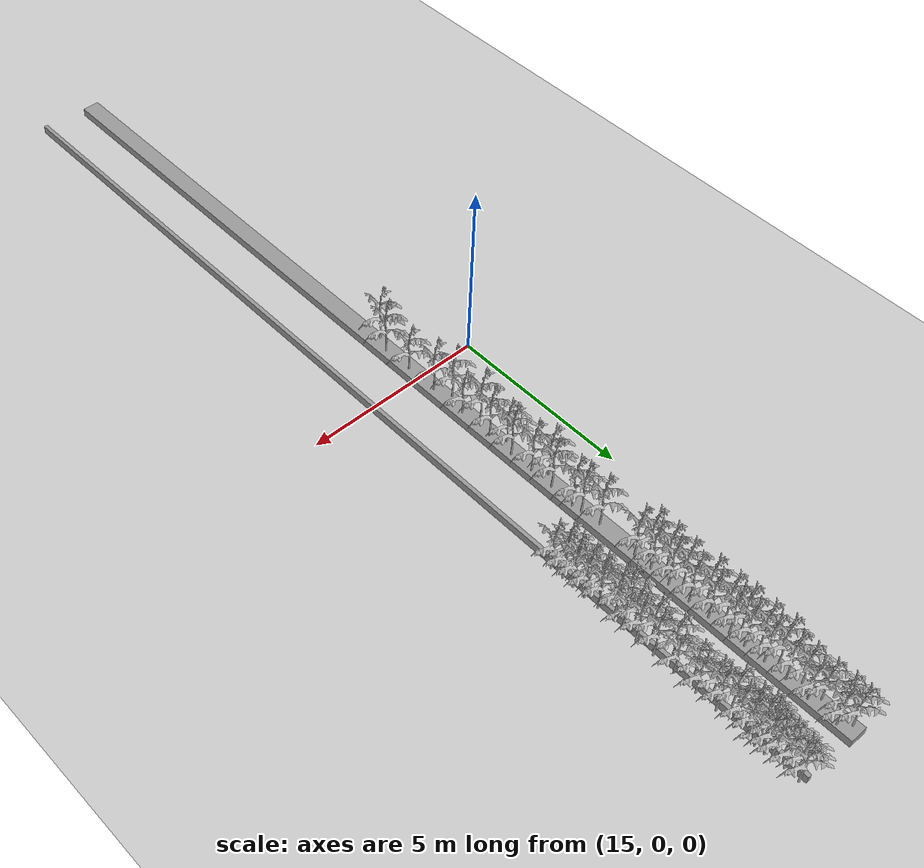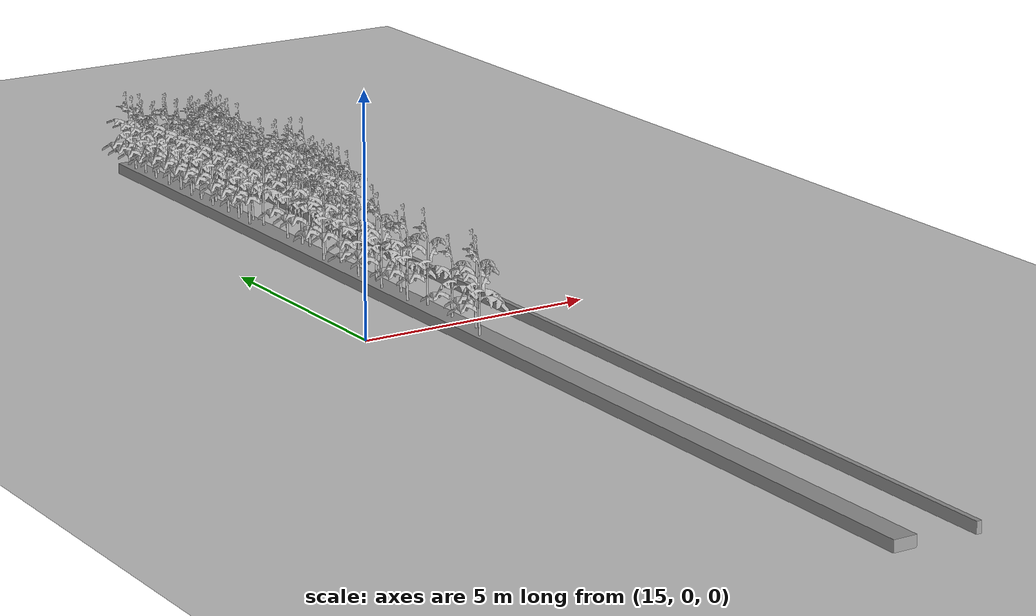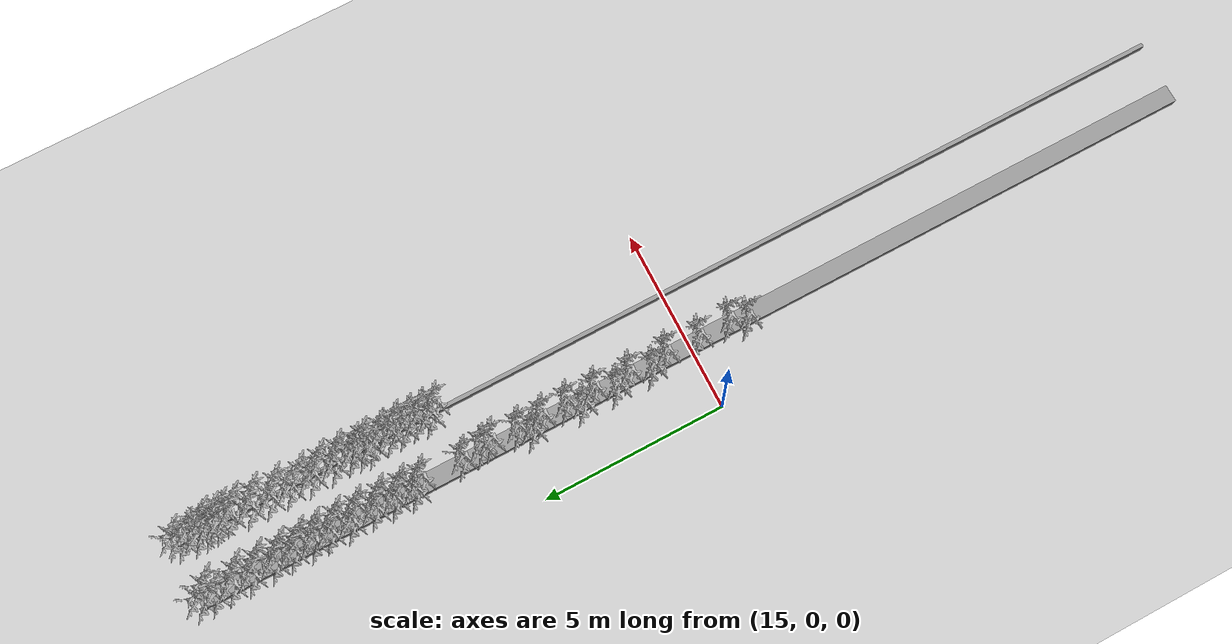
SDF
<sdf version="1.6">
 <world name="default">
  <model name="ground_plane">
   <static>1</static>
   <link name="link">
    <collision name="collision">
     <geometry><plane><normal>0 0 1</normal><size>100 100</size></plane></geometry>
     <surface>
      <contact><collide_bitmask>65535</collide_bitmask></contact>
      <friction><ode><mu>100</mu><mu2>50</mu2></ode></friction>
     </surface>
    </collision>
    <visual name="visual">
     <cast_shadows>0</cast_shadows>
     <geometry><plane><normal>0 0 1</normal><size>100 100</size></plane></geometry>
     <material>
      <script><uri>file://media/materials/scripts/gazebo.material</uri><name>Gazebo/Grey</name></script>
     </material>
    </visual>
   </link>
  </model>
  <model name="plant_base_clone_clone_0">
   <link name="link">
    <inertial>
     <mass>1</mass>
     <inertia>
      <ixx>0.166667</ixx>
      <ixy>0</ixy>
      <ixz>0</ixz>
      <iyy>0.166667</iyy>
      <iyz>0</iyz>
      <izz>0.166667</izz>
     </inertia>
    </inertial>
    <visual name="visual">
     <geometry><box><size>0.108423 27.8593 0.235695</size></box></geometry>
     <material>
      <script><name>Gazebo/Grey</name><uri>file://media/materials/scripts/gazebo.material</uri></script>
     </material>
    </visual>
    <collision name="collision">
     <geometry><box><size>0.108423 27.8593 0.235695</size></box></geometry>
     <surface>
      <friction>
       <ode><mu>1</mu><mu2>1</mu2><fdir1>0 0 0</fdir1><slip1>0</slip1><slip2>0</slip2></ode>
       <torsional>
        <coefficient>1</coefficient>
        <patch_radius>0</patch_radius>
        <surface_radius>0</surface_radius>
        <use_patch_radius>1</use_patch_radius>
        <ode><slip>0</slip></ode>
       </torsional>
      </friction>
      <bounce><restitution_coefficient>0</restitution_coefficient><threshold>1e+06</threshold></bounce>
      <contact>
       <collide_without_contact>0</collide_without_contact>
       <collide_without_contact_bitmask>1</collide_without_contact_bitmask>
       <collide_bitmask>1</collide_bitmask>
       <ode>
        <soft_cfm>0</soft_cfm>
        <soft_erp>0.2</soft_erp>
        <kp>1e+13</kp>
        <kd>1</kd>
        <max_vel>0.01</max_vel>
        <min_depth>0</min_depth>
       </ode>
       <bullet>
        <split_impulse>1</split_impulse>
        <split_impulse_penetration_threshold>-0.01</split_impulse_penetration_threshold>
        <soft_cfm>0</soft_cfm>
        <soft_erp>0.2</soft_erp>
        <kp>1e+13</kp>
        <kd>1</kd>
       </bullet>
      </contact>
     </surface>
    </collision>
   </link>
   <static>1</static>
   <pose>18.2611 -0.481715 0.134309 0 -0 0</pose>
  </model>
  <model name="plant_base_clone_clone_0_clone">
   <link name="link">
    <inertial>
     <mass>1</mass>
     <inertia>
      <ixx>0.166667</ixx>
      <ixy>0</ixy>
      <ixz>0</ixz>
      <iyy>0.166667</iyy>
      <iyz>0</iyz>
      <izz>0.166667</izz>
     </inertia>
    </inertial>
    <visual name="visual">
     <geometry><box><size>0.484753 27.8593 0.235695</size></box></geometry>
     <material>
      <script><name>Gazebo/Grey</name><uri>file://media/materials/scripts/gazebo.material</uri></script>
     </material>
    </visual>
    <collision name="collision">
     <geometry><box><size>0.484753 27.8593 0.235695</size></box></geometry>
     <surface>
      <friction>
       <ode><mu>1</mu><mu2>1</mu2><fdir1>0 0 0</fdir1><slip1>0</slip1><slip2>0</slip2></ode>
       <torsional>
        <coefficient>1</coefficient>
        <patch_radius>0</patch_radius>
        <surface_radius>0</surface_radius>
        <use_patch_radius>1</use_patch_radius>
        <ode><slip>0</slip></ode>
       </torsional>
      </friction>
      <bounce><restitution_coefficient>0</restitution_coefficient><threshold>1e+06</threshold></bounce>
      <contact>
       <collide_without_contact>0</collide_without_contact>
       <collide_without_contact_bitmask>1</collide_without_contact_bitmask>
       <collide_bitmask>1</collide_bitmask>
       <ode>
        <soft_cfm>0</soft_cfm>
        <soft_erp>0.2</soft_erp>
        <kp>1e+13</kp>
        <kd>1</kd>
        <max_vel>0.01</max_vel>
        <min_depth>0</min_depth>
       </ode>
       <bullet>
        <split_impulse>1</split_impulse>
        <split_impulse_penetration_threshold>-0.01</split_impulse_penetration_threshold>
        <soft_cfm>0</soft_cfm>
        <soft_erp>0.2</soft_erp>
        <kp>1e+13</kp>
        <kd>1</kd>
       </bullet>
      </contact>
     </surface>
    </collision>
   </link>
   <static>1</static>
   <pose>16.7542 -0.411562 0.134309 0 -0 0</pose>
  </model>
  <model name="tomato_plant_small">
   <static>1</static>
   <link name="link">
    <collision name="collision">
     <geometry>
      <mesh><scale>5e-06 5e-06 5e-06</scale><uri>model://tomato_plant_small/meshes/tomato-plant.dae</uri></mesh>
     </geometry>
    </collision>
    <visual name="visual">
     <geometry>
      <mesh><scale>5e-06 5e-06 5e-06</scale><uri>model://tomato_plant_small/meshes/tomato-plant.dae</uri></mesh>
     </geometry>
    </visual>
   </link>
   <pose>18.3906 13.2946 0 0 -0 0</pose>
  </model>
  <model name="tomato_plant_small_0">
   <static>1</static>
   <link name="link">
    <collision name="collision">
     <geometry>
      <mesh><scale>5e-06 5e-06 5e-06</scale><uri>model://tomato_plant_small/meshes/tomato-plant.dae</uri></mesh>
     </geometry>
    </collision>
    <visual name="visual">
     <geometry>
      <mesh><scale>5e-06 5e-06 5e-06</scale><uri>model://tomato_plant_small/meshes/tomato-plant.dae</uri></mesh>
     </geometry>
    </visual>
   </link>
   <pose>18.2442 13.1328 0 0 -0 0</pose>
  </model>
  <model name="tomato_plant_small_1">
   <static>1</static>
   <link name="link">
    <collision name="collision">
     <geometry>
      <mesh><scale>5e-06 5e-06 5e-06</scale><uri>model://tomato_plant_small/meshes/tomato-plant.dae</uri></mesh>
     </geometry>
    </collision>
    <visual name="visual">
     <geometry>
      <mesh><scale>5e-06 5e-06 5e-06</scale><uri>model://tomato_plant_small/meshes/tomato-plant.dae</uri></mesh>
     </geometry>
    </visual>
   </link>
   <pose>18.3727 12.9067 0 0 -0 0</pose>
  </model>
  <model name="tomato_plant_small_2">
   <static>1</static>
   <link name="link">
    <collision name="collision">
     <geometry>
      <mesh><scale>5e-06 5e-06 5e-06</scale><uri>model://tomato_plant_small/meshes/tomato-plant.dae</uri></mesh>
     </geometry>
    </collision>
    <visual name="visual">
     <geometry>
      <mesh><scale>5e-06 5e-06 5e-06</scale><uri>model://tomato_plant_small/meshes/tomato-plant.dae</uri></mesh>
     </geometry>
    </visual>
   </link>
   <pose>18.177 12.7212 0 0 -0 0</pose>
  </model>
  <model name="tomato_plant_small_3">
   <static>1</static>
   <link name="link">
    <collision name="collision">
     <geometry>
      <mesh><scale>5e-06 5e-06 5e-06</scale><uri>model://tomato_plant_small/meshes/tomato-plant.dae</uri></mesh>
     </geometry>
    </collision>
    <visual name="visual">
     <geometry>
      <mesh><scale>5e-06 5e-06 5e-06</scale><uri>model://tomato_plant_small/meshes/tomato-plant.dae</uri></mesh>
     </geometry>
    </visual>
   </link>
   <pose>18.4025 12.5943 0 0 -0 0</pose>
  </model>
  <model name="tomato_plant_small_4">
   <static>1</static>
   <link name="link">
    <collision name="collision">
     <geometry>
      <mesh><scale>5e-06 5e-06 5e-06</scale><uri>model://tomato_plant_small/meshes/tomato-plant.dae</uri></mesh>
     </geometry>
    </collision>
    <visual name="visual">
     <geometry>
      <mesh><scale>5e-06 5e-06 5e-06</scale><uri>model://tomato_plant_small/meshes/tomato-plant.dae</uri></mesh>
     </geometry>
    </visual>
   </link>
   <pose>18.183 12.4332 0 0 -0 0</pose>
  </model>
  <model name="tomato_plant_medium">
   <static>1</static>
   <link name="link">
    <collision name="collision">
     <geometry>
      <mesh><scale>5e-06 5e-06 6e-06</scale><uri>model://tomato_plant_medium/meshes/tomato-plant.dae</uri></mesh>
     </geometry>
    </collision>
    <visual name="visual">
     <geometry>
      <mesh><scale>5e-06 5e-06 6e-06</scale><uri>model://tomato_plant_medium/meshes/tomato-plant.dae</uri></mesh>
     </geometry>
    </visual>
   </link>
   <pose>18.4262 12.4256 0 0 -0 0</pose>
  </model>
  <model name="tomato_plant_medium_0">
   <static>1</static>
   <link name="link">
    <collision name="collision">
     <geometry>
      <mesh><scale>5e-06 5e-06 6e-06</scale><uri>model://tomato_plant_medium/meshes/tomato-plant.dae</uri></mesh>
     </geometry>
    </collision>
    <visual name="visual">
     <geometry>
      <mesh><scale>5e-06 5e-06 6e-06</scale><uri>model://tomato_plant_medium/meshes/tomato-plant.dae</uri></mesh>
     </geometry>
    </visual>
   </link>
   <pose>18.2674 12.2643 0 0 -0 0</pose>
  </model>
  <model name="tomato_plant_small_5">
   <static>1</static>
   <link name="link">
    <collision name="collision">
     <geometry>
      <mesh><scale>5e-06 5e-06 5e-06</scale><uri>model://tomato_plant_small/meshes/tomato-plant.dae</uri></mesh>
     </geometry>
    </collision>
    <visual name="visual">
     <geometry>
      <mesh><scale>5e-06 5e-06 5e-06</scale><uri>model://tomato_plant_small/meshes/tomato-plant.dae</uri></mesh>
     </geometry>
    </visual>
   </link>
   <pose>18.4269 12.17 0 0 -0 0</pose>
  </model>
  <model name="tomato_plant_medium_1">
   <static>1</static>
   <link name="link">
    <collision name="collision">
     <geometry>
      <mesh><scale>5e-06 5e-06 6e-06</scale><uri>model://tomato_plant_medium/meshes/tomato-plant.dae</uri></mesh>
     </geometry>
    </collision>
    <visual name="visual">
     <geometry>
      <mesh><scale>5e-06 5e-06 6e-06</scale><uri>model://tomato_plant_medium/meshes/tomato-plant.dae</uri></mesh>
     </geometry>
    </visual>
   </link>
   <pose>18.1753 12.12 0 0 -0 0</pose>
  </model>
  <model name="tomato_plant_medium_2">
   <static>1</static>
   <link name="link">
    <collision name="collision">
     <geometry>
      <mesh><scale>5e-06 5e-06 6e-06</scale><uri>model://tomato_plant_medium/meshes/tomato-plant.dae</uri></mesh>
     </geometry>
    </collision>
    <visual name="visual">
     <geometry>
      <mesh><scale>5e-06 5e-06 6e-06</scale><uri>model://tomato_plant_medium/meshes/tomato-plant.dae</uri></mesh>
     </geometry>
    </visual>
   </link>
   <pose>18.3969 11.9326 0 0 -0 0</pose>
  </model>
  <model name="tomato_plant_medium_3">
   <static>1</static>
   <link name="link">
    <collision name="collision">
     <geometry>
      <mesh><scale>5e-06 5e-06 6e-06</scale><uri>model://tomato_plant_medium/meshes/tomato-plant.dae</uri></mesh>
     </geometry>
    </collision>
    <visual name="visual">
     <geometry>
      <mesh><scale>5e-06 5e-06 6e-06</scale><uri>model://tomato_plant_medium/meshes/tomato-plant.dae</uri></mesh>
     </geometry>
    </visual>
   </link>
   <pose>18.2308 11.8231 0 0 -0 0</pose>
  </model>
  <model name="tomato_plant_medium_4">
   <static>1</static>
   <link name="link">
    <collision name="collision">
     <geometry>
      <mesh><scale>5e-06 5e-06 6e-06</scale><uri>model://tomato_plant_medium/meshes/tomato-plant.dae</uri></mesh>
     </geometry>
    </collision>
    <visual name="visual">
     <geometry>
      <mesh><scale>5e-06 5e-06 6e-06</scale><uri>model://tomato_plant_medium/meshes/tomato-plant.dae</uri></mesh>
     </geometry>
    </visual>
   </link>
   <pose>18.4029 11.6188 0 0 -0 0</pose>
  </model>
  <model name="tomato_plant_medium_5">
   <static>1</static>
   <link name="link">
    <collision name="collision">
     <geometry>
      <mesh><scale>5e-06 5e-06 6e-06</scale><uri>model://tomato_plant_medium/meshes/tomato-plant.dae</uri></mesh>
     </geometry>
    </collision>
    <visual name="visual">
     <geometry>
      <mesh><scale>5e-06 5e-06 6e-06</scale><uri>model://tomato_plant_medium/meshes/tomato-plant.dae</uri></mesh>
     </geometry>
    </visual>
   </link>
   <pose>18.1705 11.3133 0 0 -0 0</pose>
  </model>
  <model name="tomato_plant_medium_6">
   <static>1</static>
   <link name="link">
    <collision name="collision">
     <geometry>
      <mesh><scale>5e-06 5e-06 6e-06</scale><uri>model://tomato_plant_medium/meshes/tomato-plant.dae</uri></mesh>
     </geometry>
    </collision>
    <visual name="visual">
     <geometry>
      <mesh><scale>5e-06 5e-06 6e-06</scale><uri>model://tomato_plant_medium/meshes/tomato-plant.dae</uri></mesh>
     </geometry>
    </visual>
   </link>
   <pose>18.3846 11.1035 0 0 -0 0</pose>
  </model>
  <model name="tomato_plant_small_6">
   <static>1</static>
   <link name="link">
    <collision name="collision">
     <geometry>
      <mesh><scale>5e-06 5e-06 5e-06</scale><uri>model://tomato_plant_small/meshes/tomato-plant.dae</uri></mesh>
     </geometry>
    </collision>
    <visual name="visual">
     <geometry>
      <mesh><scale>5e-06 5e-06 5e-06</scale><uri>model://tomato_plant_small/meshes/tomato-plant.dae</uri></mesh>
     </geometry>
    </visual>
   </link>
   <pose>18.1771 10.8197 0 0 -0 0</pose>
  </model>
  <model name="tomato_plant_small_7">
   <static>1</static>
   <link name="link">
    <collision name="collision">
     <geometry>
      <mesh><scale>5e-06 5e-06 5e-06</scale><uri>model://tomato_plant_small/meshes/tomato-plant.dae</uri></mesh>
     </geometry>
    </collision>
    <visual name="visual">
     <geometry>
      <mesh><scale>5e-06 5e-06 5e-06</scale><uri>model://tomato_plant_small/meshes/tomato-plant.dae</uri></mesh>
     </geometry>
    </visual>
   </link>
   <pose>18.3809 10.5421 0 0 -0 0</pose>
  </model>
  <model name="tomato_plant_small_8">
   <static>1</static>
   <link name="link">
    <collision name="collision">
     <geometry>
      <mesh><scale>5e-06 5e-06 5e-06</scale><uri>model://tomato_plant_small/meshes/tomato-plant.dae</uri></mesh>
     </geometry>
    </collision>
    <visual name="visual">
     <geometry>
      <mesh><scale>5e-06 5e-06 5e-06</scale><uri>model://tomato_plant_small/meshes/tomato-plant.dae</uri></mesh>
     </geometry>
    </visual>
   </link>
   <pose>18.1815 10.2855 0 0 -0 0</pose>
  </model>
  <model name="tomato_plant_small_9">
   <static>1</static>
   <link name="link">
    <collision name="collision">
     <geometry>
      <mesh><scale>5e-06 5e-06 5e-06</scale><uri>model://tomato_plant_small/meshes/tomato-plant.dae</uri></mesh>
     </geometry>
    </collision>
    <visual name="visual">
     <geometry>
      <mesh><scale>5e-06 5e-06 5e-06</scale><uri>model://tomato_plant_small/meshes/tomato-plant.dae</uri></mesh>
     </geometry>
    </visual>
   </link>
   <pose>18.3529 9.90063 0 0 -0 0</pose>
  </model>
  <model name="tomato_plant_medium_7">
   <static>1</static>
   <link name="link">
    <collision name="collision">
     <geometry>
      <mesh><scale>5e-06 5e-06 6e-06</scale><uri>model://tomato_plant_medium/meshes/tomato-plant.dae</uri></mesh>
     </geometry>
    </collision>
    <visual name="visual">
     <geometry>
      <mesh><scale>5e-06 5e-06 6e-06</scale><uri>model://tomato_plant_medium/meshes/tomato-plant.dae</uri></mesh>
     </geometry>
    </visual>
   </link>
   <pose>18.1551 9.65907 0 0 -0 0</pose>
  </model>
  <model name="tomato_plant_medium_8">
   <static>1</static>
   <link name="link">
    <collision name="collision">
     <geometry>
      <mesh><scale>5e-06 5e-06 6e-06</scale><uri>model://tomato_plant_medium/meshes/tomato-plant.dae</uri></mesh>
     </geometry>
    </collision>
    <visual name="visual">
     <geometry>
      <mesh><scale>5e-06 5e-06 6e-06</scale><uri>model://tomato_plant_medium/meshes/tomato-plant.dae</uri></mesh>
     </geometry>
    </visual>
   </link>
   <pose>18.3601 9.32044 0 0 -0 0</pose>
  </model>
  <model name="tomato_plant_medium_9">
   <static>1</static>
   <link name="link">
    <collision name="collision">
     <geometry>
      <mesh><scale>5e-06 5e-06 6e-06</scale><uri>model://tomato_plant_medium/meshes/tomato-plant.dae</uri></mesh>
     </geometry>
    </collision>
    <visual name="visual">
     <geometry>
      <mesh><scale>5e-06 5e-06 6e-06</scale><uri>model://tomato_plant_medium/meshes/tomato-plant.dae</uri></mesh>
     </geometry>
    </visual>
   </link>
   <pose>18.1626 9.06322 0 0 -0 0</pose>
  </model>
  <model name="tomato_plant_medium_10">
   <static>1</static>
   <link name="link">
    <collision name="collision">
     <geometry>
      <mesh><scale>5e-06 5e-06 6e-06</scale><uri>model://tomato_plant_medium/meshes/tomato-plant.dae</uri></mesh>
     </geometry>
    </collision>
    <visual name="visual">
     <geometry>
      <mesh><scale>5e-06 5e-06 6e-06</scale><uri>model://tomato_plant_medium/meshes/tomato-plant.dae</uri></mesh>
     </geometry>
    </visual>
   </link>
   <pose>16.9196 13.0316 0 0 -0 0</pose>
  </model>
  <model name="tomato_plant_medium_11">
   <static>1</static>
   <link name="link">
    <collision name="collision">
     <geometry>
      <mesh><scale>5e-06 5e-06 6e-06</scale><uri>model://tomato_plant_medium/meshes/tomato-plant.dae</uri></mesh>
     </geometry>
    </collision>
    <visual name="visual">
     <geometry>
      <mesh><scale>5e-06 5e-06 6e-06</scale><uri>model://tomato_plant_medium/meshes/tomato-plant.dae</uri></mesh>
     </geometry>
    </visual>
   </link>
   <pose>16.6663 12.9 0 0 -0 0</pose>
  </model>
  <model name="tomato_plant_medium_12">
   <static>1</static>
   <link name="link">
    <collision name="collision">
     <geometry>
      <mesh><scale>5e-06 5e-06 6e-06</scale><uri>model://tomato_plant_medium/meshes/tomato-plant.dae</uri></mesh>
     </geometry>
    </collision>
    <visual name="visual">
     <geometry>
      <mesh><scale>5e-06 5e-06 6e-06</scale><uri>model://tomato_plant_medium/meshes/tomato-plant.dae</uri></mesh>
     </geometry>
    </visual>
   </link>
   <pose>16.7001 13.2713 0.021757 0 -0 0</pose>
  </model>
  <model name="tomato_plant_medium_13">
   <static>1</static>
   <link name="link">
    <collision name="collision">
     <geometry>
      <mesh><scale>5e-06 5e-06 6e-06</scale><uri>model://tomato_plant_medium/meshes/tomato-plant.dae</uri></mesh>
     </geometry>
    </collision>
    <visual name="visual">
     <geometry>
      <mesh><scale>5e-06 5e-06 6e-06</scale><uri>model://tomato_plant_medium/meshes/tomato-plant.dae</uri></mesh>
     </geometry>
    </visual>
   </link>
   <pose>16.683 12.4521 0 0 -0 0</pose>
  </model>
  <model name="tomato_plant_medium_14">
   <static>1</static>
   <link name="link">
    <collision name="collision">
     <geometry>
      <mesh><scale>5e-06 5e-06 6e-06</scale><uri>model://tomato_plant_medium/meshes/tomato-plant.dae</uri></mesh>
     </geometry>
    </collision>
    <visual name="visual">
     <geometry>
      <mesh><scale>5e-06 5e-06 6e-06</scale><uri>model://tomato_plant_medium/meshes/tomato-plant.dae</uri></mesh>
     </geometry>
    </visual>
   </link>
   <pose>16.8879 12.2541 0 0 -0 0</pose>
  </model>
  <model name="tomato_plant_medium_15">
   <static>1</static>
   <link name="link">
    <collision name="collision">
     <geometry>
      <mesh><scale>5e-06 5e-06 6e-06</scale><uri>model://tomato_plant_medium/meshes/tomato-plant.dae</uri></mesh>
     </geometry>
    </collision>
    <visual name="visual">
     <geometry>
      <mesh><scale>5e-06 5e-06 6e-06</scale><uri>model://tomato_plant_medium/meshes/tomato-plant.dae</uri></mesh>
     </geometry>
    </visual>
   </link>
   <pose>16.6728 11.9349 0 0 -0 0</pose>
  </model>
  <model name="tomato_plant_big">
   <static>1</static>
   <link name="link">
    <collision name="collision">
     <geometry>
      <mesh><scale>5e-06 5e-06 6e-06</scale><uri>model://tomato_plant_big/meshes/tomato-plant.dae</uri></mesh>
     </geometry>
    </collision>
    <visual name="visual">
     <geometry>
      <mesh><scale>5e-06 5e-06 7e-06</scale><uri>model://tomato_plant_big/meshes/tomato-plant.dae</uri></mesh>
     </geometry>
    </visual>
   </link>
   <pose>16.8575 11.6462 0 0 -0 0</pose>
  </model>
  <model name="tomato_plant_big_0">
   <static>1</static>
   <link name="link">
    <collision name="collision">
     <geometry>
      <mesh><scale>5e-06 5e-06 6e-06</scale><uri>model://tomato_plant_big/meshes/tomato-plant.dae</uri></mesh>
     </geometry>
    </collision>
    <visual name="visual">
     <geometry>
      <mesh><scale>5e-06 5e-06 7e-06</scale><uri>model://tomato_plant_big/meshes/tomato-plant.dae</uri></mesh>
     </geometry>
    </visual>
   </link>
   <pose>16.6663 11.3037 0 0 -0 0</pose>
  </model>
  <model name="tomato_plant_big_1">
   <static>1</static>
   <link name="link">
    <collision name="collision">
     <geometry>
      <mesh><scale>5e-06 5e-06 6e-06</scale><uri>model://tomato_plant_big/meshes/tomato-plant.dae</uri></mesh>
     </geometry>
    </collision>
    <visual name="visual">
     <geometry>
      <mesh><scale>5e-06 5e-06 7e-06</scale><uri>model://tomato_plant_big/meshes/tomato-plant.dae</uri></mesh>
     </geometry>
    </visual>
   </link>
   <pose>16.851 11.0689 0 0 -0 0</pose>
  </model>
  <model name="tomato_plant_big_2">
   <static>1</static>
   <link name="link">
    <collision name="collision">
     <geometry>
      <mesh><scale>5e-06 5e-06 6e-06</scale><uri>model://tomato_plant_big/meshes/tomato-plant.dae</uri></mesh>
     </geometry>
    </collision>
    <visual name="visual">
     <geometry>
      <mesh><scale>5e-06 5e-06 7e-06</scale><uri>model://tomato_plant_big/meshes/tomato-plant.dae</uri></mesh>
     </geometry>
    </visual>
   </link>
   <pose>16.6968 10.7975 0 0 -0 0</pose>
  </model>
  <model name="tomato_plant_big_3">
   <static>1</static>
   <link name="link">
    <collision name="collision">
     <geometry>
      <mesh><scale>5e-06 5e-06 6e-06</scale><uri>model://tomato_plant_big/meshes/tomato-plant.dae</uri></mesh>
     </geometry>
    </collision>
    <visual name="visual">
     <geometry>
      <mesh><scale>5e-06 5e-06 7e-06</scale><uri>model://tomato_plant_big/meshes/tomato-plant.dae</uri></mesh>
     </geometry>
    </visual>
   </link>
   <pose>16.8713 10.5362 0 0 -0 0</pose>
  </model>
  <model name="tomato_plant_big_4">
   <static>1</static>
   <link name="link">
    <collision name="collision">
     <geometry>
      <mesh><scale>5e-06 5e-06 6e-06</scale><uri>model://tomato_plant_big/meshes/tomato-plant.dae</uri></mesh>
     </geometry>
    </collision>
    <visual name="visual">
     <geometry>
      <mesh><scale>5e-06 5e-06 7e-06</scale><uri>model://tomato_plant_big/meshes/tomato-plant.dae</uri></mesh>
     </geometry>
    </visual>
   </link>
   <pose>16.6745 10.2599 0 0 -0 0</pose>
  </model>
  <model name="tomato_plant_big_5">
   <static>1</static>
   <link name="link">
    <collision name="collision">
     <geometry>
      <mesh><scale>5e-06 5e-06 6e-06</scale><uri>model://tomato_plant_big/meshes/tomato-plant.dae</uri></mesh>
     </geometry>
    </collision>
    <visual name="visual">
     <geometry>
      <mesh><scale>5e-06 5e-06 7e-06</scale><uri>model://tomato_plant_big/meshes/tomato-plant.dae</uri></mesh>
     </geometry>
    </visual>
   </link>
   <pose>16.865 10.1107 0 0 -0 0</pose>
  </model>
  <model name="tomato_plant_big_6">
   <static>1</static>
   <link name="link">
    <collision name="collision">
     <geometry>
      <mesh><scale>5e-06 5e-06 6e-06</scale><uri>model://tomato_plant_big/meshes/tomato-plant.dae</uri></mesh>
     </geometry>
    </collision>
    <visual name="visual">
     <geometry>
      <mesh><scale>5e-06 5e-06 7e-06</scale><uri>model://tomato_plant_big/meshes/tomato-plant.dae</uri></mesh>
     </geometry>
    </visual>
   </link>
   <pose>16.6882 9.83508 0 0 -0 0</pose>
  </model>
  <model name="tomato_plant_big_7">
   <static>1</static>
   <link name="link">
    <collision name="collision">
     <geometry>
      <mesh><scale>5e-06 5e-06 6e-06</scale><uri>model://tomato_plant_big/meshes/tomato-plant.dae</uri></mesh>
     </geometry>
    </collision>
    <visual name="visual">
     <geometry>
      <mesh><scale>5e-06 5e-06 7e-06</scale><uri>model://tomato_plant_big/meshes/tomato-plant.dae</uri></mesh>
     </geometry>
    </visual>
   </link>
   <pose>16.8909 9.54383 0 0 -0 0</pose>
  </model>
  <model name="tomato_plant_big_8">
   <static>1</static>
   <link name="link">
    <collision name="collision">
     <geometry>
      <mesh><scale>5e-06 5e-06 6e-06</scale><uri>model://tomato_plant_big/meshes/tomato-plant.dae</uri></mesh>
     </geometry>
    </collision>
    <visual name="visual">
     <geometry>
      <mesh><scale>5e-06 5e-06 7e-06</scale><uri>model://tomato_plant_big/meshes/tomato-plant.dae</uri></mesh>
     </geometry>
    </visual>
   </link>
   <pose>16.6704 9.2785 0 0 -0 0</pose>
  </model>
  <model name="tomato_plant_big_9">
   <static>1</static>
   <link name="link">
    <collision name="collision">
     <geometry>
      <mesh><scale>5e-06 5e-06 6e-06</scale><uri>model://tomato_plant_big/meshes/tomato-plant.dae</uri></mesh>
     </geometry>
    </collision>
    <visual name="visual">
     <geometry>
      <mesh><scale>5e-06 5e-06 7e-06</scale><uri>model://tomato_plant_big/meshes/tomato-plant.dae</uri></mesh>
     </geometry>
    </visual>
   </link>
   <pose>16.8893 8.98824 0 0 -0 0</pose>
  </model>
  <model name="tomato_plant_big_10">
   <static>1</static>
   <link name="link">
    <collision name="collision">
     <geometry>
      <mesh><scale>5e-06 5e-06 6e-06</scale><uri>model://tomato_plant_big/meshes/tomato-plant.dae</uri></mesh>
     </geometry>
    </collision>
    <visual name="visual">
     <geometry>
      <mesh><scale>5e-06 5e-06 7e-06</scale><uri>model://tomato_plant_big/meshes/tomato-plant.dae</uri></mesh>
     </geometry>
    </visual>
   </link>
   <pose>16.7063 8.63368 0 0 -0 0</pose>
  </model>
  <model name="tomato_plant_big_11">
   <static>1</static>
   <link name="link">
    <collision name="collision">
     <geometry>
      <mesh><scale>5e-06 5e-06 6e-06</scale><uri>model://tomato_plant_big/meshes/tomato-plant.dae</uri></mesh>
     </geometry>
    </collision>
    <visual name="visual">
     <geometry>
      <mesh><scale>5e-06 5e-06 7e-06</scale><uri>model://tomato_plant_big/meshes/tomato-plant.dae</uri></mesh>
     </geometry>
    </visual>
   </link>
   <pose>16.8886 8.38831 0 0 -0 0</pose>
  </model>
  <model name="tomato_plant_medium_16">
   <static>1</static>
   <link name="link">
    <collision name="collision">
     <geometry>
      <mesh><scale>5e-06 5e-06 6e-06</scale><uri>model://tomato_plant_medium/meshes/tomato-plant.dae</uri></mesh>
     </geometry>
    </collision>
    <visual name="visual">
     <geometry>
      <mesh><scale>5e-06 5e-06 6e-06</scale><uri>model://tomato_plant_medium/meshes/tomato-plant.dae</uri></mesh>
     </geometry>
    </visual>
   </link>
   <pose>18.3739 8.83297 0 0 -0 0</pose>
  </model>
  <model name="tomato_plant_medium_17">
   <static>1</static>
   <link name="link">
    <collision name="collision">
     <geometry>
      <mesh><scale>5e-06 5e-06 6e-06</scale><uri>model://tomato_plant_medium/meshes/tomato-plant.dae</uri></mesh>
     </geometry>
    </collision>
    <visual name="visual">
     <geometry>
      <mesh><scale>5e-06 5e-06 6e-06</scale><uri>model://tomato_plant_medium/meshes/tomato-plant.dae</uri></mesh>
     </geometry>
    </visual>
   </link>
   <pose>18.193 8.58456 0 0 -0 0</pose>
  </model>
  <model name="tomato_plant_small_10">
   <static>1</static>
   <link name="link">
    <collision name="collision">
     <geometry>
      <mesh><scale>5e-06 5e-06 5e-06</scale><uri>model://tomato_plant_small/meshes/tomato-plant.dae</uri></mesh>
     </geometry>
    </collision>
    <visual name="visual">
     <geometry>
      <mesh><scale>5e-06 5e-06 5e-06</scale><uri>model://tomato_plant_small/meshes/tomato-plant.dae</uri></mesh>
     </geometry>
    </visual>
   </link>
   <pose>18.3539 8.40984 0 0 -0 0</pose>
  </model>
  <model name="tomato_plant_big_12">
   <static>1</static>
   <link name="link">
    <collision name="collision">
     <geometry>
      <mesh><scale>5e-06 5e-06 6e-06</scale><uri>model://tomato_plant_big/meshes/tomato-plant.dae</uri></mesh>
     </geometry>
    </collision>
    <visual name="visual">
     <geometry>
      <mesh><scale>5e-06 5e-06 7e-06</scale><uri>model://tomato_plant_big/meshes/tomato-plant.dae</uri></mesh>
     </geometry>
    </visual>
   </link>
   <pose>18.1506 8.27583 0 0 -0 0</pose>
  </model>
  <model name="tomato_plant_big_13">
   <static>1</static>
   <link name="link">
    <collision name="collision">
     <geometry>
      <mesh><scale>5e-06 5e-06 6e-06</scale><uri>model://tomato_plant_big/meshes/tomato-plant.dae</uri></mesh>
     </geometry>
    </collision>
    <visual name="visual">
     <geometry>
      <mesh><scale>5e-06 5e-06 7e-06</scale><uri>model://tomato_plant_big/meshes/tomato-plant.dae</uri></mesh>
     </geometry>
    </visual>
   </link>
   <pose>18.3371 8.13851 0 0 -0 0</pose>
  </model>
  <model name="tomato_plant_medium_18">
   <static>1</static>
   <link name="link">
    <collision name="collision">
     <geometry>
      <mesh><scale>5e-06 5e-06 6e-06</scale><uri>model://tomato_plant_medium/meshes/tomato-plant.dae</uri></mesh>
     </geometry>
    </collision>
    <visual name="visual">
     <geometry>
      <mesh><scale>5e-06 5e-06 6e-06</scale><uri>model://tomato_plant_medium/meshes/tomato-plant.dae</uri></mesh>
     </geometry>
    </visual>
   </link>
   <pose>18.1249 8.04721 0 0 -0 0</pose>
  </model>
  <model name="tomato_plant_medium_19">
   <static>1</static>
   <link name="link">
    <collision name="collision">
     <geometry>
      <mesh><scale>5e-06 5e-06 6e-06</scale><uri>model://tomato_plant_medium/meshes/tomato-plant.dae</uri></mesh>
     </geometry>
    </collision>
    <visual name="visual">
     <geometry>
      <mesh><scale>5e-06 5e-06 6e-06</scale><uri>model://tomato_plant_medium/meshes/tomato-plant.dae</uri></mesh>
     </geometry>
    </visual>
   </link>
   <pose>18.3581 7.68979 0 0 -0 0</pose>
  </model>
  <model name="tomato_plant_big_14">
   <static>1</static>
   <link name="link">
    <collision name="collision">
     <geometry>
      <mesh><scale>5e-06 5e-06 6e-06</scale><uri>model://tomato_plant_big/meshes/tomato-plant.dae</uri></mesh>
     </geometry>
    </collision>
    <visual name="visual">
     <geometry>
      <mesh><scale>5e-06 5e-06 7e-06</scale><uri>model://tomato_plant_big/meshes/tomato-plant.dae</uri></mesh>
     </geometry>
    </visual>
   </link>
   <pose>16.6728 8.11093 0 0 -0 0</pose>
  </model>
  <model name="tomato_plant_big_15">
   <static>1</static>
   <link name="link">
    <collision name="collision">
     <geometry>
      <mesh><scale>5e-06 5e-06 6e-06</scale><uri>model://tomato_plant_big/meshes/tomato-plant.dae</uri></mesh>
     </geometry>
    </collision>
    <visual name="visual">
     <geometry>
      <mesh><scale>5e-06 5e-06 7e-06</scale><uri>model://tomato_plant_big/meshes/tomato-plant.dae</uri></mesh>
     </geometry>
    </visual>
   </link>
   <pose>16.8657 7.83324 0 0 -0 0</pose>
  </model>
  <model name="tomato_plant_big_16">
   <static>1</static>
   <link name="link">
    <collision name="collision">
     <geometry>
      <mesh><scale>5e-06 5e-06 6e-06</scale><uri>model://tomato_plant_big/meshes/tomato-plant.dae</uri></mesh>
     </geometry>
    </collision>
    <visual name="visual">
     <geometry>
      <mesh><scale>5e-06 5e-06 7e-06</scale><uri>model://tomato_plant_big/meshes/tomato-plant.dae</uri></mesh>
     </geometry>
    </visual>
   </link>
   <pose>16.6437 7.58312 0 0 -0 0</pose>
  </model>
  <model name="tomato_plant_big_17">
   <static>1</static>
   <link name="link">
    <collision name="collision">
     <geometry>
      <mesh><scale>5e-06 5e-06 6e-06</scale><uri>model://tomato_plant_big/meshes/tomato-plant.dae</uri></mesh>
     </geometry>
    </collision>
    <visual name="visual">
     <geometry>
      <mesh><scale>5e-06 5e-06 7e-06</scale><uri>model://tomato_plant_big/meshes/tomato-plant.dae</uri></mesh>
     </geometry>
    </visual>
   </link>
   <pose>16.8453 7.3331 0 0 -0 0</pose>
  </model>
  <model name="tomato_plant_big_19">
   <static>1</static>
   <link name="link">
    <collision name="collision">
     <geometry>
      <mesh><scale>5e-06 5e-06 6e-06</scale><uri>model://tomato_plant_big/meshes/tomato-plant.dae</uri></mesh>
     </geometry>
    </collision>
    <visual name="visual">
     <geometry>
      <mesh><scale>5e-06 5e-06 7e-06</scale><uri>model://tomato_plant_big/meshes/tomato-plant.dae</uri></mesh>
     </geometry>
    </visual>
   </link>
   <pose>16.8073 6.22622 0 0 -0 0</pose>
  </model>
  <model name="tomato_plant_big_21">
   <static>1</static>
   <link name="link">
    <collision name="collision">
     <geometry>
      <mesh><scale>5e-06 5e-06 6e-06</scale><uri>model://tomato_plant_big/meshes/tomato-plant.dae</uri></mesh>
     </geometry>
    </collision>
    <visual name="visual">
     <geometry>
      <mesh><scale>5e-06 5e-06 7e-06</scale><uri>model://tomato_plant_big/meshes/tomato-plant.dae</uri></mesh>
     </geometry>
    </visual>
   </link>
   <pose>16.8602 5.69264 0 0 -0 0</pose>
  </model>
  <model name="tomato_plant_medium_20">
   <static>1</static>
   <link name="link">
    <collision name="collision">
     <geometry>
      <mesh><scale>5e-06 5e-06 6e-06</scale><uri>model://tomato_plant_medium/meshes/tomato-plant.dae</uri></mesh>
     </geometry>
    </collision>
    <visual name="visual">
     <geometry>
      <mesh><scale>5e-06 5e-06 6e-06</scale><uri>model://tomato_plant_medium/meshes/tomato-plant.dae</uri></mesh>
     </geometry>
    </visual>
   </link>
   <pose>18.1876 7.54288 0 0 -0 0</pose>
  </model>
  <model name="tomato_plant_medium_21">
   <static>1</static>
   <link name="link">
    <collision name="collision">
     <geometry>
      <mesh><scale>5e-06 5e-06 6e-06</scale><uri>model://tomato_plant_medium/meshes/tomato-plant.dae</uri></mesh>
     </geometry>
    </collision>
    <visual name="visual">
     <geometry>
      <mesh><scale>5e-06 5e-06 6e-06</scale><uri>model://tomato_plant_medium/meshes/tomato-plant.dae</uri></mesh>
     </geometry>
    </visual>
   </link>
   <pose>18.3867 7.29336 0 0 -0 0</pose>
  </model>
  <model name="tomato_plant_medium_22">
   <static>1</static>
   <link name="link">
    <collision name="collision">
     <geometry>
      <mesh><scale>5e-06 5e-06 6e-06</scale><uri>model://tomato_plant_medium/meshes/tomato-plant.dae</uri></mesh>
     </geometry>
    </collision>
    <visual name="visual">
     <geometry>
      <mesh><scale>5e-06 5e-06 6e-06</scale><uri>model://tomato_plant_medium/meshes/tomato-plant.dae</uri></mesh>
     </geometry>
    </visual>
   </link>
   <pose>18.1767 7.19997 0 0 -0 0</pose>
  </model>
  <model name="tomato_plant_medium_23">
   <static>1</static>
   <link name="link">
    <collision name="collision">
     <geometry>
      <mesh><scale>5e-06 5e-06 6e-06</scale><uri>model://tomato_plant_medium/meshes/tomato-plant.dae</uri></mesh>
     </geometry>
    </collision>
    <visual name="visual">
     <geometry>
      <mesh><scale>5e-06 5e-06 6e-06</scale><uri>model://tomato_plant_medium/meshes/tomato-plant.dae</uri></mesh>
     </geometry>
    </visual>
   </link>
   <pose>18.3724 6.9311 0 0 -0 0</pose>
  </model>
  <model name="tomato_plant_medium_24">
   <static>1</static>
   <link name="link">
    <collision name="collision">
     <geometry>
      <mesh><scale>5e-06 5e-06 6e-06</scale><uri>model://tomato_plant_medium/meshes/tomato-plant.dae</uri></mesh>
     </geometry>
    </collision>
    <visual name="visual">
     <geometry>
      <mesh><scale>5e-06 5e-06 6e-06</scale><uri>model://tomato_plant_medium/meshes/tomato-plant.dae</uri></mesh>
     </geometry>
    </visual>
   </link>
   <pose>18.2114 6.81646 0 0 -0 0</pose>
  </model>
  <model name="tomato_plant_medium_25">
   <static>1</static>
   <link name="link">
    <collision name="collision">
     <geometry>
      <mesh><scale>5e-06 5e-06 6e-06</scale><uri>model://tomato_plant_medium/meshes/tomato-plant.dae</uri></mesh>
     </geometry>
    </collision>
    <visual name="visual">
     <geometry>
      <mesh><scale>5e-06 5e-06 6e-06</scale><uri>model://tomato_plant_medium/meshes/tomato-plant.dae</uri></mesh>
     </geometry>
    </visual>
   </link>
   <pose>18.365 6.61197 0 0 -0 0</pose>
  </model>
  <model name="tomato_plant_medium_26">
   <static>1</static>
   <link name="link">
    <collision name="collision">
     <geometry>
      <mesh><scale>5e-06 5e-06 6e-06</scale><uri>model://tomato_plant_medium/meshes/tomato-plant.dae</uri></mesh>
     </geometry>
    </collision>
    <visual name="visual">
     <geometry>
      <mesh><scale>5e-06 5e-06 6e-06</scale><uri>model://tomato_plant_medium/meshes/tomato-plant.dae</uri></mesh>
     </geometry>
    </visual>
   </link>
   <pose>18.1476 6.48023 0 0 -0 0</pose>
  </model>
  <model name="tomato_plant_medium_27">
   <static>1</static>
   <link name="link">
    <collision name="collision">
     <geometry>
      <mesh><scale>5e-06 5e-06 6e-06</scale><uri>model://tomato_plant_medium/meshes/tomato-plant.dae</uri></mesh>
     </geometry>
    </collision>
    <visual name="visual">
     <geometry>
      <mesh><scale>5e-06 5e-06 6e-06</scale><uri>model://tomato_plant_medium/meshes/tomato-plant.dae</uri></mesh>
     </geometry>
    </visual>
   </link>
   <pose>18.3649 6.24824 0 0 -0 0</pose>
  </model>
  <model name="tomato_plant_big_23">
   <static>1</static>
   <link name="link">
    <collision name="collision">
     <geometry>
      <mesh><scale>5e-06 5e-06 6e-06</scale><uri>model://tomato_plant_big/meshes/tomato-plant.dae</uri></mesh>
     </geometry>
    </collision>
    <visual name="visual">
     <geometry>
      <mesh><scale>5e-06 5e-06 7e-06</scale><uri>model://tomato_plant_big/meshes/tomato-plant.dae</uri></mesh>
     </geometry>
    </visual>
   </link>
   <pose>16.8918 5.43474 0 0 -0 0</pose>
  </model>
  <model name="tomato_plant_big_25">
   <static>1</static>
   <link name="link">
    <collision name="collision">
     <geometry>
      <mesh><scale>5e-06 5e-06 6e-06</scale><uri>model://tomato_plant_big/meshes/tomato-plant.dae</uri></mesh>
     </geometry>
    </collision>
    <visual name="visual">
     <geometry>
      <mesh><scale>5e-06 5e-06 7e-06</scale><uri>model://tomato_plant_big/meshes/tomato-plant.dae</uri></mesh>
     </geometry>
    </visual>
   </link>
   <pose>16.8466 4.72193 0 0 -0 0</pose>
  </model>
  <model name="tomato_plant_big_26">
   <static>1</static>
   <link name="link">
    <collision name="collision">
     <geometry>
      <mesh><scale>5e-06 5e-06 6e-06</scale><uri>model://tomato_plant_big/meshes/tomato-plant.dae</uri></mesh>
     </geometry>
    </collision>
    <visual name="visual">
     <geometry>
      <mesh><scale>5e-06 5e-06 7e-06</scale><uri>model://tomato_plant_big/meshes/tomato-plant.dae</uri></mesh>
     </geometry>
    </visual>
   </link>
   <pose>16.6396 4.42277 0 0 -0 0</pose>
  </model>
  <model name="tomato_plant_big_27">
   <static>1</static>
   <link name="link">
    <collision name="collision">
     <geometry>
      <mesh><scale>5e-06 5e-06 6e-06</scale><uri>model://tomato_plant_big/meshes/tomato-plant.dae</uri></mesh>
     </geometry>
    </collision>
    <visual name="visual">
     <geometry>
      <mesh><scale>5e-06 5e-06 7e-06</scale><uri>model://tomato_plant_big/meshes/tomato-plant.dae</uri></mesh>
     </geometry>
    </visual>
   </link>
   <pose>16.8454 4.06482 0 0 -0 0</pose>
  </model>
  <model name="tomato_plant_big_29">
   <static>1</static>
   <link name="link">
    <collision name="collision">
     <geometry>
      <mesh><scale>5e-06 5e-06 6e-06</scale><uri>model://tomato_plant_big/meshes/tomato-plant.dae</uri></mesh>
     </geometry>
    </collision>
    <visual name="visual">
     <geometry>
      <mesh><scale>5e-06 5e-06 7e-06</scale><uri>model://tomato_plant_big/meshes/tomato-plant.dae</uri></mesh>
     </geometry>
    </visual>
   </link>
   <pose>16.8595 3.39617 0 0 -0 0</pose>
  </model>
  <model name="tomato_plant_medium_28">
   <static>1</static>
   <link name="link">
    <collision name="collision">
     <geometry>
      <mesh><scale>5e-06 5e-06 6e-06</scale><uri>model://tomato_plant_medium/meshes/tomato-plant.dae</uri></mesh>
     </geometry>
    </collision>
    <visual name="visual">
     <geometry>
      <mesh><scale>5e-06 5e-06 6e-06</scale><uri>model://tomato_plant_medium/meshes/tomato-plant.dae</uri></mesh>
     </geometry>
    </visual>
   </link>
   <pose>16.6557 3.03767 0 0 -0 0</pose>
  </model>
  <model name="tomato_plant_big_30">
   <static>1</static>
   <link name="link">
    <collision name="collision">
     <geometry>
      <mesh><scale>5e-06 5e-06 6e-06</scale><uri>model://tomato_plant_big/meshes/tomato-plant.dae</uri></mesh>
     </geometry>
    </collision>
    <visual name="visual">
     <geometry>
      <mesh><scale>5e-06 5e-06 7e-06</scale><uri>model://tomato_plant_big/meshes/tomato-plant.dae</uri></mesh>
     </geometry>
    </visual>
   </link>
   <pose>16.8343 2.6317 0 0 -0 0</pose>
  </model>
  <model name="tomato_plant_big_31">
   <static>1</static>
   <link name="link">
    <collision name="collision">
     <geometry>
      <mesh><scale>5e-06 5e-06 6e-06</scale><uri>model://tomato_plant_big/meshes/tomato-plant.dae</uri></mesh>
     </geometry>
    </collision>
    <visual name="visual">
     <geometry>
      <mesh><scale>5e-06 5e-06 7e-06</scale><uri>model://tomato_plant_big/meshes/tomato-plant.dae</uri></mesh>
     </geometry>
    </visual>
   </link>
   <pose>16.6389 2.11003 0 0 -0 0</pose>
  </model>
  <model name="tomato_plant_medium_29">
   <static>1</static>
   <link name="link">
    <collision name="collision">
     <geometry>
      <mesh><scale>5e-06 5e-06 6e-06</scale><uri>model://tomato_plant_medium/meshes/tomato-plant.dae</uri></mesh>
     </geometry>
    </collision>
    <visual name="visual">
     <geometry>
      <mesh><scale>5e-06 5e-06 6e-06</scale><uri>model://tomato_plant_medium/meshes/tomato-plant.dae</uri></mesh>
     </geometry>
    </visual>
   </link>
   <pose>16.8288 1.66908 0 0 -0 0</pose>
  </model>
  <model name="tomato_plant_big_32">
   <static>1</static>
   <link name="link">
    <collision name="collision">
     <geometry>
      <mesh><scale>5e-06 5e-06 6e-06</scale><uri>model://tomato_plant_big/meshes/tomato-plant.dae</uri></mesh>
     </geometry>
    </collision>
    <visual name="visual">
     <geometry>
      <mesh><scale>5e-06 5e-06 7e-06</scale><uri>model://tomato_plant_big/meshes/tomato-plant.dae</uri></mesh>
     </geometry>
    </visual>
   </link>
   <pose>16.6395 1.11249 0 0 -0 0</pose>
  </model>
  <model name="tomato_plant_big_33">
   <static>1</static>
   <link name="link">
    <collision name="collision">
     <geometry>
      <mesh><scale>5e-06 5e-06 6e-06</scale><uri>model://tomato_plant_big/meshes/tomato-plant.dae</uri></mesh>
     </geometry>
    </collision>
    <visual name="visual">
     <geometry>
      <mesh><scale>5e-06 5e-06 7e-06</scale><uri>model://tomato_plant_big/meshes/tomato-plant.dae</uri></mesh>
     </geometry>
    </visual>
   </link>
   <pose>16.8267 0.645431 0 0 -0 0</pose>
  </model>
  <model name="tomato_plant_medium_30">
   <static>1</static>
   <link name="link">
    <collision name="collision">
     <geometry>
      <mesh><scale>5e-06 5e-06 6e-06</scale><uri>model://tomato_plant_medium/meshes/tomato-plant.dae</uri></mesh>
     </geometry>
    </collision>
    <visual name="visual">
     <geometry>
      <mesh><scale>5e-06 5e-06 6e-06</scale><uri>model://tomato_plant_medium/meshes/tomato-plant.dae</uri></mesh>
     </geometry>
    </visual>
   </link>
   <pose>16.8214 -0.274519 0 0 -0 0</pose>
  </model>
  <model name="tomato_plant_big_35">
   <static>1</static>
   <link name="link">
    <collision name="collision">
     <geometry>
      <mesh><scale>5e-06 5e-06 6e-06</scale><uri>model://tomato_plant_big/meshes/tomato-plant.dae</uri></mesh>
     </geometry>
    </collision>
    <visual name="visual">
     <geometry>
      <mesh><scale>5e-06 5e-06 7e-06</scale><uri>model://tomato_plant_big/meshes/tomato-plant.dae</uri></mesh>
     </geometry>
    </visual>
   </link>
   <pose>16.8316 -1.12586 0 0 -0 0</pose>
  </model>
  <model name="tomato_plant_big_36">
   <static>1</static>
   <link name="link">
    <collision name="collision">
     <geometry>
      <mesh><scale>5e-06 5e-06 6e-06</scale><uri>model://tomato_plant_big/meshes/tomato-plant.dae</uri></mesh>
     </geometry>
    </collision>
    <visual name="visual">
     <geometry>
      <mesh><scale>5e-06 5e-06 7e-06</scale><uri>model://tomato_plant_big/meshes/tomato-plant.dae</uri></mesh>
     </geometry>
    </visual>
   </link>
   <pose>16.6424 -1.55478 0 0 -0 0</pose>
  </model>
 </world>
</sdf>
